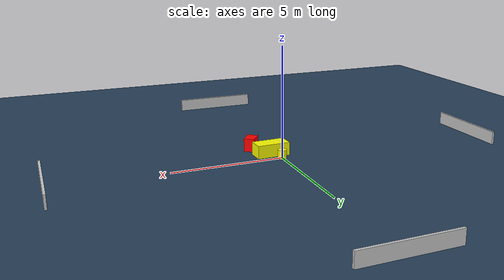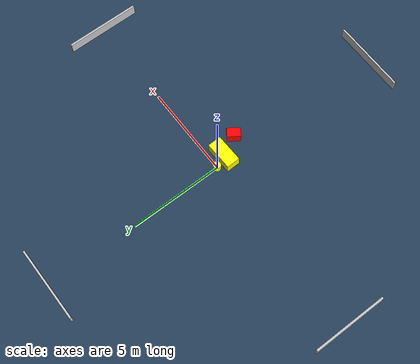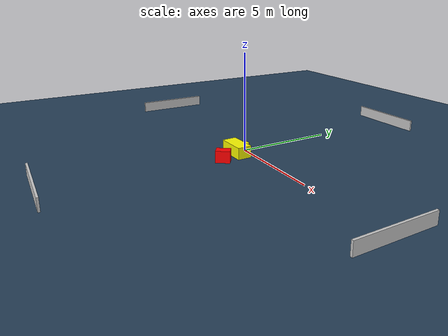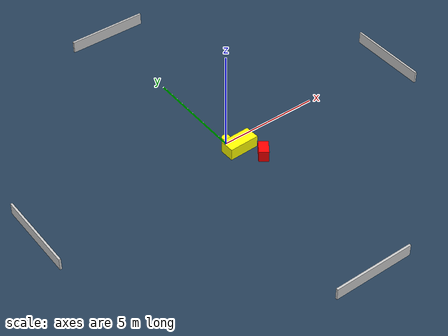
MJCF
<?xml version="1.0" ?>
<mujoco model="generated_environment">
  <option timestep="0.01" integrator="RK4" cone="elliptic"/>
  <default>
    <geom density="1"/>
  </default>
  <asset>
    <texture builtin="gradient" height="3072" name="skybox" rgb1="0.3 0.5 0.7" rgb2="0 0 0" type="skybox" width="512"/>
    <texture builtin="checker" height="300" name="groundplane" rgb1="0.2 0.3 0.4" rgb2="0.1 0.2 0.3" type="2d" width="300"/>
    <material name="groundplane" reflectance="0.2" texrepeat="5 5" texture="groundplane"/>
  </asset>
  <worldbody>
    <light dir="0 0 -1" directional="true" pos="0 0 1.5"/>
    <geom condim="3" friction="0.5 0.005 0.001" material="groundplane" name="floor" pos="0 0 0" size="0 0 0.05" type="plane"/>
    <body name="walls">
      <geom name="wall_1" condim="4" pos="-10.0 0.0 0.3" rgba="0.800000011920929 0.800000011920929 0.800000011920929 1.0" size="0.05 2.0 0.3" type="box"/>
      <geom name="wall_2" condim="4" pos="10.0 0.0 0.3" rgba="0.800000011920929 0.800000011920929 0.800000011920929 1.0" size="0.05 2.0 0.3" type="box"/>
      <geom name="wall_3" condim="4" pos="0.0 -10.0 0.3" rgba="0.800000011920929 0.800000011920929 0.800000011920929 1.0" size="2.0 0.05 0.3" type="box"/>
      <geom name="wall_4" condim="4" pos="0.0 10.0 0.3" rgba="0.800000011920929 0.800000011920929 0.800000011920929 1.0" size="2.0 0.05 0.3" type="box"/>
    </body>
    <body name="robot">
      <joint name="joint_x" type="slide" pos="0 0 0" axis="1 0 0"/>
      <joint name="joint_y" type="slide" pos="0 0 0" axis="0 1 0"/>
      <geom name="robot" type="cylinder" pos="0.0 0.0 0.2" size="0.2 0.2 0.0" mass="5.0" friction="1.0 0.005 0.0001" condim="4" rgba="1.0 1.0 0.0 1.0"/>
    </body>
    <body name="obstacle_1_movable">
      <geom name="obstacle_1_movable" condim="4" pos="0.2887373733999214 -0.6353970969323799 0.3" euler="0 0 271.82949743058725" friction="0.0 0.005 0.001" rgba="1.0 1.0 0.0 1.0" size="0.36576273306398543 0.7564931567573103 0.3" type="box" mass="0.1"/>
      <joint type="free"/>
    </body>
    <body name="obstacle_2_static">
      <geom name="obstacle_2_static" condim="4" pos="0.8469714530335464 -1.6925387125261373 0.3" euler="0 0 54.77502696661995" friction="0.0 0.005 0.001" rgba="1.0 0.0 0.0 1.0" size="0.3564951369951843 0.24011851191413208 0.3" type="box"/>
    </body>
  </worldbody>
  <actuator>
    <motor name="actuator_x" joint="joint_x" gear="1" ctrlrange="-1 1"/>
    <motor name="actuator_y" joint="joint_y" gear="1" ctrlrange="-1 1"/>
  </actuator>
</mujoco>
